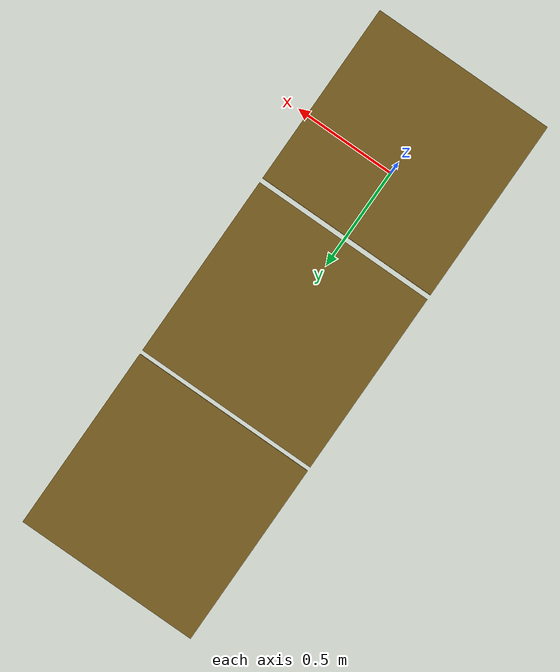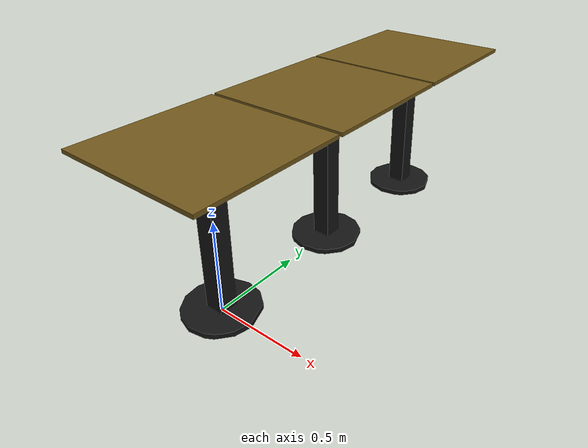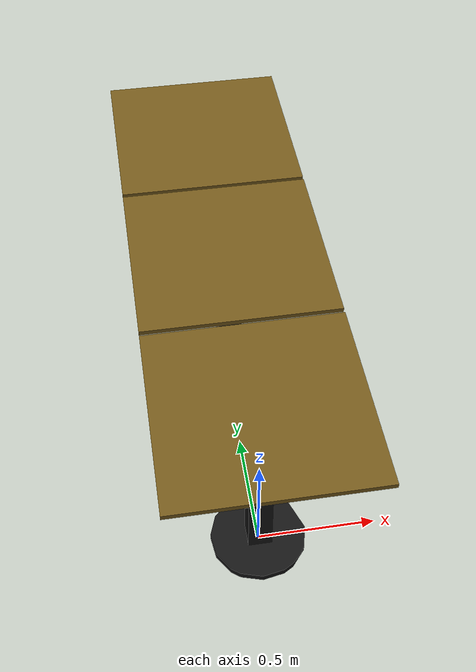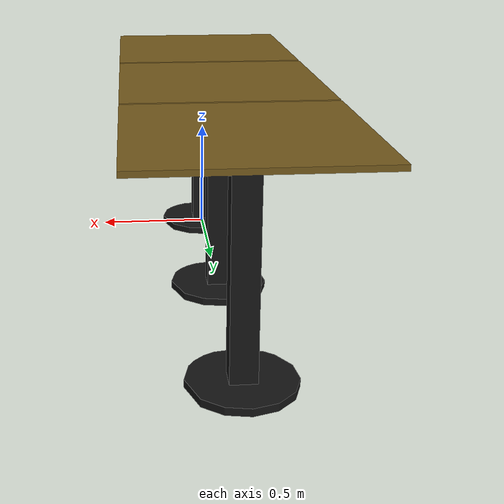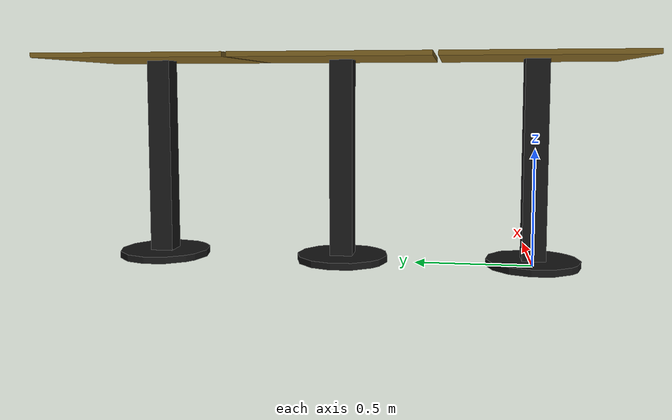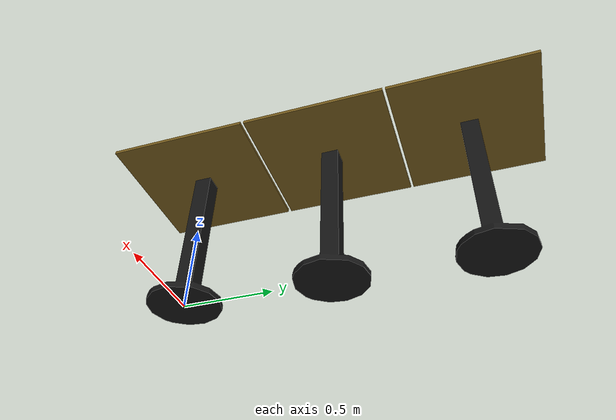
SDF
<?xml version="1.0" ?>
<sdf version="1.5">
  <model name="table_restaurant_6people">
    <link name="link">
      <pose>0 0 0 0 0 0</pose>
      <collision name="collision">
        <geometry>
          <mesh>
            <uri>model://table_restaurant_6people/meshes/model.dae</uri>
          </mesh>
        </geometry>
      </collision>
      <visual name="visual">
        <geometry>
          <mesh>
            <uri>model://table_restaurant_6people/meshes/model.dae</uri>
          </mesh>
        </geometry>
      </visual>
    </link>
    <static>1</static>
  </model>
</sdf>
